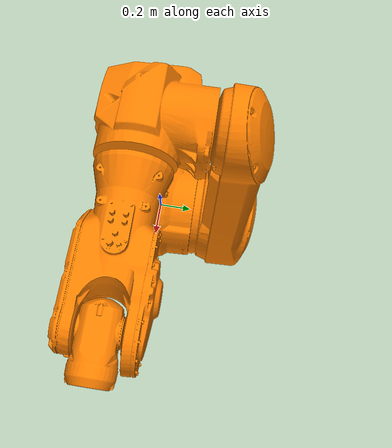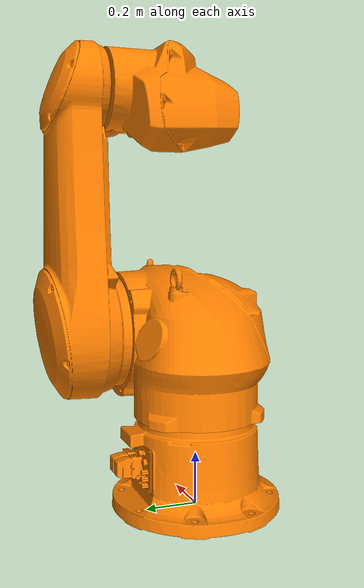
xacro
<?xml version="1.0" encoding="UTF-8"?>
<robot xmlns:xacro="http://wiki.ros.org/xacro" name="tx200">

  <xacro:include filename="$(find robot-arm)/urdf/common.xacro" />
  <xacro:include filename="$(find robot-arm)/urdf/tx200/tx200_gazebo.xacro" />
  <xacro:include filename="$(find robot-arm)/urdf/tx200/tx200_macro.xacro" />
  <xacro:include filename="$(find robot-arm)/urdf/tx200/tx200_macro.ros2_control.xacro" />

</robot>

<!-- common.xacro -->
<robot xmlns:xacro="http://www.ros.org/wiki/xacro" name="tx200">
  <xacro:property name="shoulder_joint_upper_limit" value="${radians(180)}" />
  <xacro:property name="shoulder_joint_lower_limit" value="${radians(-180)}" />

  <xacro:property name="arm_joint_upper_limit" value="${radians(130)}" />
  <xacro:property name="arm_joint_lower_limit" value="${radians(-60)}" />

  <xacro:property name="elbow_joint_upper_limit" value="${radians(180)}" />
  <xacro:property name="elbow_joint_lower_limit" value="${radians(-60)}" />

  <xacro:property name="forearm_joint_upper_limit" value="${radians(180)}" />
  <xacro:property name="forearm_joint_lower_limit" value="${radians(-180)}" />

  <xacro:property name="wrist_joint_upper_limit" value="${radians(110)}" />
  <xacro:property name="wrist_joint_lower_limit" value="${radians(-110)}" />
</robot>

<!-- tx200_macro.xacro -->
<robot xmlns:xacro="http://www.ros.org/wiki/xacro" name="tx200">
  <link name="world"></link>
  <link
    name="robot_base_link">
    <inertial>
      <origin
        xyz="0.00026066 0.00094721 0.16721"
        rpy="0 0 0" />
      <mass
        value="63.755" />
      <inertia
        ixx="1.6712"
        ixy="-0.0046856"
        ixz="-4.7419E-05"
        iyy="1.6412"
        iyz="-0.015828"
        izz="2.0916" />
    </inertial>
    <visual>
      <origin
        xyz="0 0 0"
        rpy="0 0 0" />
      <geometry>
        <mesh
          filename="package://robot-arm/meshes/tx200/visual/base_link.STL" />
      </geometry>
      <material
        name="">
        <color
          rgba="1 0.50196 0 1" />
      </material>
    </visual>
    <collision>
      <origin
        xyz="0 0 0"
        rpy="0 0 0" />
      <geometry>
        <mesh
          filename="package://robot-arm/meshes/tx200/collision/base_link.STL" />
      </geometry>
    </collision>
  </link>
  <link
    name="shoulder_link">
    <inertial>
      <origin
        xyz="0.14856 -0.013564 0.25306"
        rpy="0 0 0" />
      <mass
        value="154.38" />
      <inertia
        ixx="5.8791"
        ixy="0.005498"
        ixz="-0.62699"
        iyy="8.2707"
        iyz="-0.09633"
        izz="8.1731" />
    </inertial>
    <visual>
      <origin
        xyz="0 0 0"
        rpy="0 0 0" />
      <geometry>
        <mesh
          filename="package://robot-arm/meshes/tx200/visual/shoulder_link.STL" />
      </geometry>
      <material
        name="">
        <color
          rgba="1 0.50196 0 1" />
      </material>
    </visual>
    <collision>
      <origin
        xyz="0 0 0"
        rpy="0 0 0" />
      <geometry>
        <mesh
          filename="package://robot-arm/meshes/tx200/collision/shoulder_link.STL" />
      </geometry>
    </collision>
  </link>

  <joint name="world_to_robot_base" type="fixed">
    <parent link="world" />
    <child link="robot_base_link" />
  </joint>
  <joint
    name="base_to_shoulder_joint"
    type="revolute">
    <origin
      xyz="0 0 0.347"
      rpy="0 0 0" />
    <parent
      link="robot_base_link" />
    <child
      link="shoulder_link" />
    <axis
      xyz="0 0 -1" />
    <limit
      lower="${shoulder_joint_lower_limit}"
      upper="${shoulder_joint_upper_limit}"
      effort="0"
      velocity="0" />
  </joint>
  <link
    name="arm_link">
    <inertial>
      <origin
        xyz="0.0044408 0.33383 -0.15881"
        rpy="0 0 0" />
      <mass
        value="120.7" />
      <inertia
        ixx="16.904"
        ixy="-0.082464"
        ixz="0.0042604"
        iyy="2.2595"
        iyz="0.19322"
        izz="17.972" />
    </inertial>
    <visual>
      <origin
        xyz="0 0 0"
        rpy="0 0 0" />
      <geometry>
        <mesh
          filename="package://robot-arm/meshes/tx200/visual/arm_link.STL" />
      </geometry>
      <material
        name="">
        <color
          rgba="1 0.50196 0 1" />
      </material>
    </visual>
    <collision>
      <origin
        xyz="0 0 0"
        rpy="0 0 0" />
      <geometry>
        <mesh
          filename="package://robot-arm/meshes/tx200/collision/arm_link.STL" />
      </geometry>
    </collision>
  </link>
  <joint
    name="shoulder_to_arm_joint"
    type="revolute">
    <origin
      xyz="0.25 0.239 0.301"
      rpy="1.5708 0 0" />
    <parent
      link="shoulder_link" />
    <child
      link="arm_link" />
    <axis
      xyz="0 0 -1" />
    <limit
      lower="${arm_joint_lower_limit}"
      upper="${arm_joint_upper_limit}"
      effort="0"
      velocity="0" />
  </joint>
  <link
    name="elbow_link">
    <inertial>
      <origin
        xyz="-0.02969 -0.042696 -0.23138"
        rpy="0 0 0" />
      <mass
        value="54.85" />
      <inertia
        ixx="1.5777"
        ixy="-0.22458"
        ixz="-0.060632"
        iyy="1.2712"
        iyz="-0.078975"
        izz="1.2875" />
    </inertial>
    <visual>
      <origin
        xyz="0 0 0"
        rpy="0 0 0" />
      <geometry>
        <mesh
          filename="package://robot-arm/meshes/tx200/visual/elbow_link.STL" />
      </geometry>
      <material
        name="">
        <color
          rgba="1 0.50196 0 1" />
      </material>
    </visual>
    <collision>
      <origin
        xyz="0 0 0"
        rpy="0 0 0" />
      <geometry>
        <mesh
          filename="package://robot-arm/meshes/tx200/collision/elbow_link.STL" />
      </geometry>
    </collision>
  </link>
  <joint
    name="arm_to_elbow_joint"
    type="revolute">
    <origin
      xyz="-0.0013914 0.95009 -0.04995"
      rpy="${pi} 0 ${pi/2}" />
    <parent
      link="arm_link" />
    <child
      link="elbow_link" />
    <axis
      xyz="0 0 -1" />
    <limit
      lower="${elbow_joint_lower_limit}"
      upper="${elbow_joint_upper_limit}"
      effort="0"
      velocity="0" />
  </joint>
  <link
    name="forearm_link">
    <inertial>
      <origin
        xyz="0.0051041 0.0017748 0.3241"
        rpy="0 0 0" />
      <mass
        value="32.604" />
      <inertia
        ixx="9.7"
        ixy="0.00055231"
        ixz="-0.03"
        iyy="9.57"
        iyz="0.14"
        izz="0.3536" />
    </inertial>
    <visual>
      <origin
        xyz="0 0 0"
        rpy="0 0 0" />
      <geometry>
        <mesh
          filename="package://robot-arm/meshes/tx200/visual/forearm_link.STL" />
      </geometry>
      <material
        name="">
        <color
          rgba="1 0.50196 0 1" />
      </material>
    </visual>
    <collision>
      <origin
        xyz="0 0 0"
        rpy="0 0 0" />
      <geometry>
        <mesh
          filename="package://robot-arm/meshes/tx200/collision/forearm_link.STL" />
      </geometry>
    </collision>
  </link>
  <joint
    name="elbow_to_forearm_joint"
    type="revolute">
    <origin
      xyz="0 0.17799 -0.2758"
      rpy="${-pi/2} ${-pi/2} 0" />
    <parent
      link="elbow_link" />
    <child
      link="forearm_link" />
    <axis
      xyz="0 0 -1" />
    <limit
      lower="${forearm_joint_lower_limit}"
      upper="${forearm_joint_upper_limit}"
      effort="0"
      velocity="0" />
  </joint>
  <link
    name="wrist_link">
    <inertial>
      <origin
        xyz="0.049261 2.4716E-05 -0.0025318"
        rpy="0 0 0" />
      <mass
        value="5.3091" />
      <inertia
        ixx="0.05"
        ixy="-6.8698E-06"
        ixz="0.00015324"
        iyy="0.02"
        iyz="3.9383E-06"
        izz="0.05" />
    </inertial>
    <visual>
      <origin
        xyz="0 0 0"
        rpy="0 0 0" />
      <geometry>
        <mesh
          filename="package://robot-arm/meshes/tx200/visual/wrist_link.STL" />
      </geometry>
      <material
        name="">
        <color
          rgba="1 0.50196 0 1" />
      </material>
    </visual>
    <collision>
      <origin
        xyz="0 0 0"
        rpy="0 0 0" />
      <geometry>
        <mesh
          filename="package://robot-arm/meshes/tx200/collision/wrist_link.STL" />
      </geometry>
    </collision>
  </link>
  <joint
    name="forearm_to_wrist_joint"
    type="revolute">
    <origin
      xyz="-0.00375 -8.7479E-05 0.62225"
      rpy="${pi} ${-pi/2} 0" />
    <parent
      link="forearm_link" />
    <child
      link="wrist_link" />
    <axis
      xyz="0 0 -1" />
    <limit
      lower="${wrist_joint_lower_limit}"
      upper="${wrist_joint_upper_limit}"
      effort="0"
      velocity="0" />
  </joint>
</robot>
